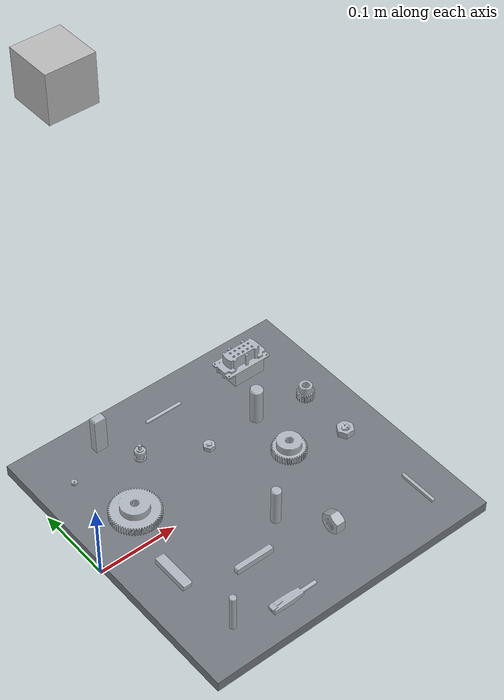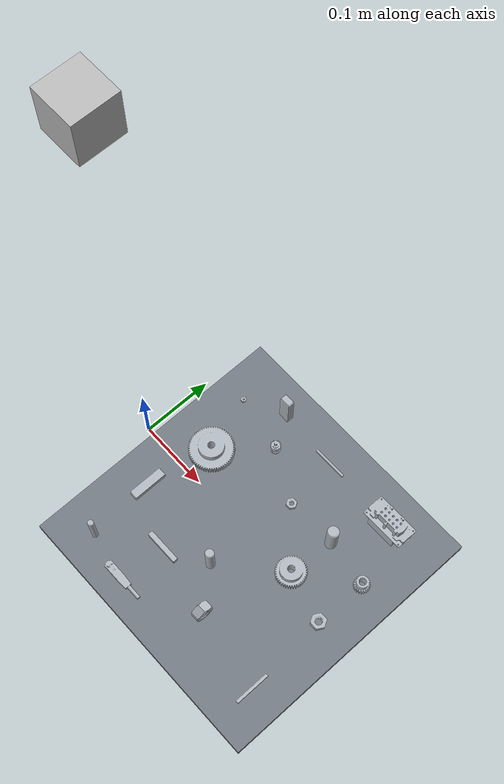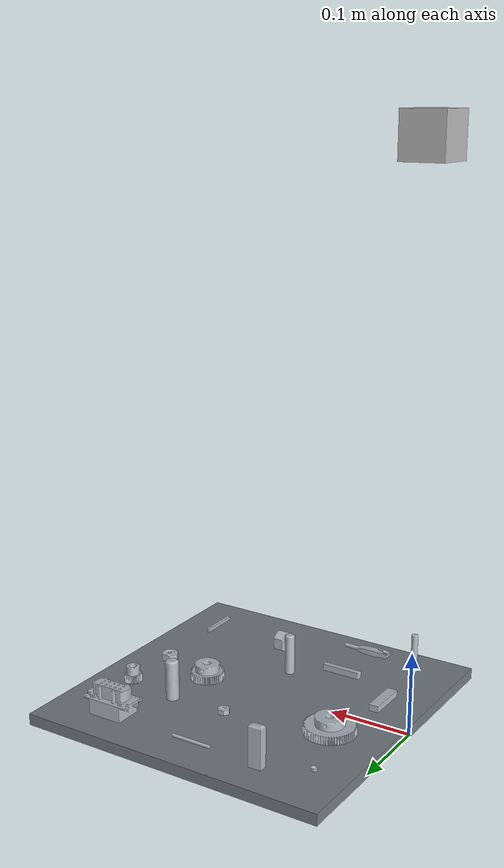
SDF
<sdf version="1.11">
 <world name="abb_irb120_3_58_world">
  <physics name="1ms" type="ignored">
   <max_step_size>0.001</max_step_size>
   <real_time_factor>1.0</real_time_factor>
  </physics>
  <plugin filename="gz-sim-physics-system" name="gz::sim::systems::Physics"/>
  <plugin filename="gz-sim-user-commands-system" name="gz::sim::systems::UserCommands"/>
  <plugin filename="gz-sim-scene-broadcaster-system" name="gz::sim::systems::SceneBroadcaster"/>
  <plugin filename="gz-sim-sensors-system" name="gz::sim::systems::Sensors">
   <render_engine>ogre2</render_engine>
  </plugin>
  <light type="directional" name="sun">
   <pose>0 0 10 0 0 0</pose>
   <diffuse>0.8 0.8 0.8 1</diffuse>
   <specular>0.2 0.2 0.2 1</specular>
   <attenuation>
    <range>1000</range>
    <constant>0.9</constant>
    <linear>0.01</linear>
    <quadratic>0.001</quadratic>
   </attenuation>
   <direction>-0.5 0.1 -0.9</direction>
  </light>
  <model name="overhead_camera">
   <static>true</static>
   <pose>0.00 0.00 0.65  1.5708 0 0</pose>
   <link name="overhead_link">
    <inertial><mass>0.1</mass><inertia><ixx>0.001</ixx><iyy>0.001</iyy><izz>0.001</izz></inertia></inertial>
    <collision name="overhead_collision"><geometry><box><size>0.05 0.05 0.05</size></box></geometry></collision>
    <visual name="overhead_visual"><geometry><box><size>0.05 0.05 0.05</size></box></geometry></visual>
    <sensor name="rgbd_overhead" type="rgbd">
     <always_on>true</always_on>
     <update_rate>30</update_rate>
     <visualize>true</visualize>
     <topic>overhead_camera/rgbd</topic>
     <camera name="overhead_cam">
      <horizontal_fov>1.047</horizontal_fov>
      <image><width>1024</width><height>768</height></image>
      <clip><near>0.20</near><far>1.5</far></clip>
     </camera>
    </sensor>
   </link>
  </model>
  <model name="Tray">
   <static>true</static>
   <pose>0.200 0.000 0 0 0 0</pose>
   <link name="tray_link">
    <collision name="collision">
     <geometry><mesh><uri>model://project_description/meshes/taskboard_1/dae/Tray.dae</uri></mesh></geometry>
    </collision>
    <visual name="visual">
     <geometry><mesh><uri>model://project_description/meshes/taskboard_1/dae/Tray.dae</uri></mesh></geometry>
    </visual>
   </link>
  </model>
  <model name="m16_nut">
   <static>true</static>
   <pose>0.235 -0.112 0.012  -3.142 1.571 -3.142</pose>
   <link name="m16_nut_link">
    <collision name="collision">
     <geometry><mesh><uri>model://project_description/meshes/taskboard_1/dae/M16_Nut.dae</uri></mesh></geometry>
    </collision>
    <visual name="visual">
     <geometry><mesh><uri>model://project_description/meshes/taskboard_1/dae/M16_Nut.dae</uri></mesh></geometry>
    </visual>
   </link>
  </model>
  <model name="m12_nut">
   <static>true</static>
   <pose>0.341 -0.012 0.004   0.000 0.000 0.000</pose>
   <link name="m12_nut_link">
    <collision name="collision">
     <geometry><mesh><uri>model://project_description/meshes/taskboard_1/dae/M12_Nut.dae</uri></mesh></geometry>
    </collision>
    <visual name="visual">
     <geometry><mesh><uri>model://project_description/meshes/taskboard_1/dae/M12_Nut.dae</uri></mesh></geometry>
    </visual>
   </link>
  </model>
  <model name="m8_nut">
   <static>true</static>
   <pose>0.204 0.069 0.003   0.000 0.000 0.000</pose>
   <link name="m8_nut_link">
    <collision name="collision">
     <geometry><mesh><uri>model://project_description/meshes/taskboard_1/dae/M8_Nut.dae</uri></mesh></geometry>
    </collision>
    <visual name="visual">
     <geometry><mesh><uri>model://project_description/meshes/taskboard_1/dae/M8_Nut.dae</uri></mesh></geometry>
    </visual>
   </link>
  </model>
  <model name="m4_nut">
   <static>true</static>
   <pose>0.052 0.122 0.002   0.000 0.000 0.000</pose>
   <link name="m4_nut_link">
    <collision name="collision">
     <geometry><mesh><uri>model://project_description/meshes/taskboard_1/dae/M4_Nut.dae</uri></mesh></geometry>
    </collision>
    <visual name="visual">
     <geometry><mesh><uri>model://project_description/meshes/taskboard_1/dae/M4_Nut.dae</uri></mesh></geometry>
    </visual>
   </link>
  </model>
  <model name="ket16">
   <static>true</static>
   <pose>0.107 0.149 0.025   0.000 0.000 0.000</pose>
   <link name="ket16_link">
    <collision name="collision">
     <geometry><mesh><uri>model://project_description/meshes/taskboard_1/dae/KET16.dae</uri></mesh></geometry>
    </collision>
    <visual name="visual">
     <geometry><mesh><uri>model://project_description/meshes/taskboard_1/dae/KET16.dae</uri></mesh></geometry>
    </visual>
   </link>
  </model>
  <model name="ket12">
   <static>true</static>
   <pose>0.059 -0.052 0.004   1.571 0.000 0.000</pose>
   <link name="ket12_link">
    <collision name="collision">
     <geometry><mesh><uri>model://project_description/meshes/taskboard_1/dae/KET12.dae</uri></mesh></geometry>
    </collision>
    <visual name="visual">
     <geometry><mesh><uri>model://project_description/meshes/taskboard_1/dae/KET12.dae</uri></mesh></geometry>
    </visual>
   </link>
  </model>
  <model name="ket8">
   <static>true</static>
   <pose>0.137 -0.093 0.004   3.142 -1.571 -3.142</pose>
   <link name="ket8_link">
    <collision name="collision">
     <geometry><mesh><uri>model://project_description/meshes/taskboard_1/dae/KET8.dae</uri></mesh></geometry>
    </collision>
    <visual name="visual">
     <geometry><mesh><uri>model://project_description/meshes/taskboard_1/dae/KET8.dae</uri></mesh></geometry>
    </visual>
   </link>
  </model>
  <model name="ket4">
   <static>true</static>
   <pose>0.347 -0.129 0.002   1.571 0.000 0.000</pose>
   <link name="ket41_link">
    <collision name="collision">
     <geometry><mesh><uri>model://project_description/meshes/taskboard_1/dae/KET4.dae</uri></mesh></geometry>
    </collision>
    <visual name="visual">
     <geometry><mesh><uri>model://project_description/meshes/taskboard_1/dae/KET4.dae</uri></mesh></geometry>
    </visual>
   </link>
  </model>
  <model name="gear_large">
   <static>true</static>
   <pose>0.078 0.042 0.01  -3.142 0.000 3.142</pose>
   <link name="gear_large_link">
    <collision name="collision">
     <geometry><mesh><uri>model://project_description/meshes/taskboard_1/dae/Gear_Large.dae</uri></mesh></geometry>
    </collision>
    <visual name="visual">
     <geometry><mesh><uri>model://project_description/meshes/taskboard_1/dae/Gear_Large.dae</uri></mesh></geometry>
    </visual>
   </link>
  </model>
  <model name="gear_medium">
   <static>true</static>
   <pose>0.271 0.006 0.01  -3.142 0.000 -3.142</pose>
   <link name="gear_medium_link">
    <collision name="collision">
     <geometry>
      <mesh><uri>model://project_description/meshes/taskboard_1/dae/Gear_Medium.dae</uri></mesh>
     </geometry>
    </collision>
    <visual name="visual">
     <geometry>
      <mesh><uri>model://project_description/meshes/taskboard_1/dae/Gear_Medium.dae</uri></mesh>
     </geometry>
    </visual>
   </link>
  </model>
  <model name="gear_small">
   <static>true</static>
   <pose>0.343 0.061 0.01   3.142 0.000 3.142</pose>
   <link name="gear_small_link">
    <collision name="collision">
     <geometry><mesh><uri>model://project_description/meshes/taskboard_1/dae/Gear_Small.dae</uri></mesh></geometry>
    </collision>
    <visual name="visual">
     <geometry><mesh><uri>model://project_description/meshes/taskboard_1/dae/Gear_Small.dae</uri></mesh></geometry>
    </visual>
   </link>
  </model>
  <model name="RGOCG16-50">
   <static>true</static>
   <pose>0.276 0.071 0.024   0.000 0.000 0.000</pose>
   <link name="rcog16-50_link">
    <collision name="collision">
     <geometry><mesh><uri>model://project_description/meshes/taskboard_1/dae/RGOCG16-50.dae</uri></mesh></geometry>
    </collision>
    <visual name="visual">
     <geometry><mesh><uri>model://project_description/meshes/taskboard_1/dae/RGOCG16-50.dae</uri></mesh></geometry>
    </visual>
   </link>
  </model>
  <model name="RGOCG12-50">
   <static>true</static>
   <pose>0.194 -0.062 0.025  0.000 0.000 0.000</pose>
   <link name="rcog12-50_link">
    <collision name="collision">
     <geometry><mesh><uri>model://project_description/meshes/taskboard_1/dae/RGOCG12-50.dae</uri></mesh></geometry>
    </collision>
    <visual name="visual">
     <geometry><mesh><uri>model://project_description/meshes/taskboard_1/dae/RGOCG12-50.dae</uri></mesh></geometry>
    </visual>
   </link>
  </model>
  <model name="RGOCG8-50">
   <static>true</static>
   <pose>0.065 -0.146 0.025  0.000 0.000 0.000</pose>
   <link name="rcog8-50_link">
    <collision name="collision">
     <geometry><mesh><uri>model://project_description/meshes/taskboard_1/dae/RGOCG8-50.dae</uri></mesh></geometry>
    </collision>
    <visual name="visual">
     <geometry><mesh><uri>model://project_description/meshes/taskboard_1/dae/RGOCG8-50.dae</uri></mesh></geometry>
    </visual>
   </link>
  </model>
  <model name="RGOCG4-50">
   <static>true</static>
   <pose>0.196 0.145 0.002   3.130 -1.571 -3.130</pose>
   <link name="rcog4-50_link">
    <collision name="collision">
     <geometry><mesh><uri>model://project_description/meshes/taskboard_1/dae/RGOCG4-50.dae</uri></mesh></geometry>
    </collision>
    <visual name="visual">
     <geometry><mesh><uri>model://project_description/meshes/taskboard_1/dae/RGOCG4-50.dae</uri></mesh></geometry>
    </visual>
   </link>
  </model>
  <model name="BNC_Male">
   <static>true</static>
   <pose>0.133 0.106 0.011 -3.142 0.000 0.000</pose>
   <link name="bnc_male_link">
    <collision name="collision">
     <geometry><mesh><uri>model://project_description/meshes/taskboard_1/dae/BNC_Male.dae</uri></mesh></geometry>
    </collision>
    <visual name="visual">
     <geometry><mesh><uri>model://project_description/meshes/taskboard_1/dae/BNC_Male.dae</uri></mesh></geometry>
    </visual>
   </link>
  </model>
  <model name="RJ45_Male">
   <static>true</static>
   <pose>0.137 -0.15906 0.00688 0 0 0</pose>
   <link name="rj45_male_link">
    <collision name="collision">
     <geometry><mesh><uri>model://project_description/meshes/taskboard_1/dae/RJ45_Male.dae</uri></mesh></geometry>
    </collision>
    <visual name="visual">
     <geometry><mesh><uri>model://project_description/meshes/taskboard_1/dae/RJ45_Male.dae</uri></mesh></geometry>
    </visual>
   </link>
  </model>
  <model name="MCON-E10-SP">
   <static>true</static>
   <pose>0.30978 0.14078 0.01978  0 0 0</pose>
   <link name="mcon-e10-sp_link">
    <collision name="collision">
     <geometry>
      <mesh><uri>model://project_description/meshes/taskboard_1/dae/MCON-E10-SP.dae</uri></mesh>
     </geometry>
    </collision>
    <visual name="visual">
     <geometry>
      <mesh><uri>model://project_description/meshes/taskboard_1/dae/MCON-E10-SP.dae</uri></mesh>
     </geometry>
    </visual>
   </link>
  </model>
 </world>
</sdf>
